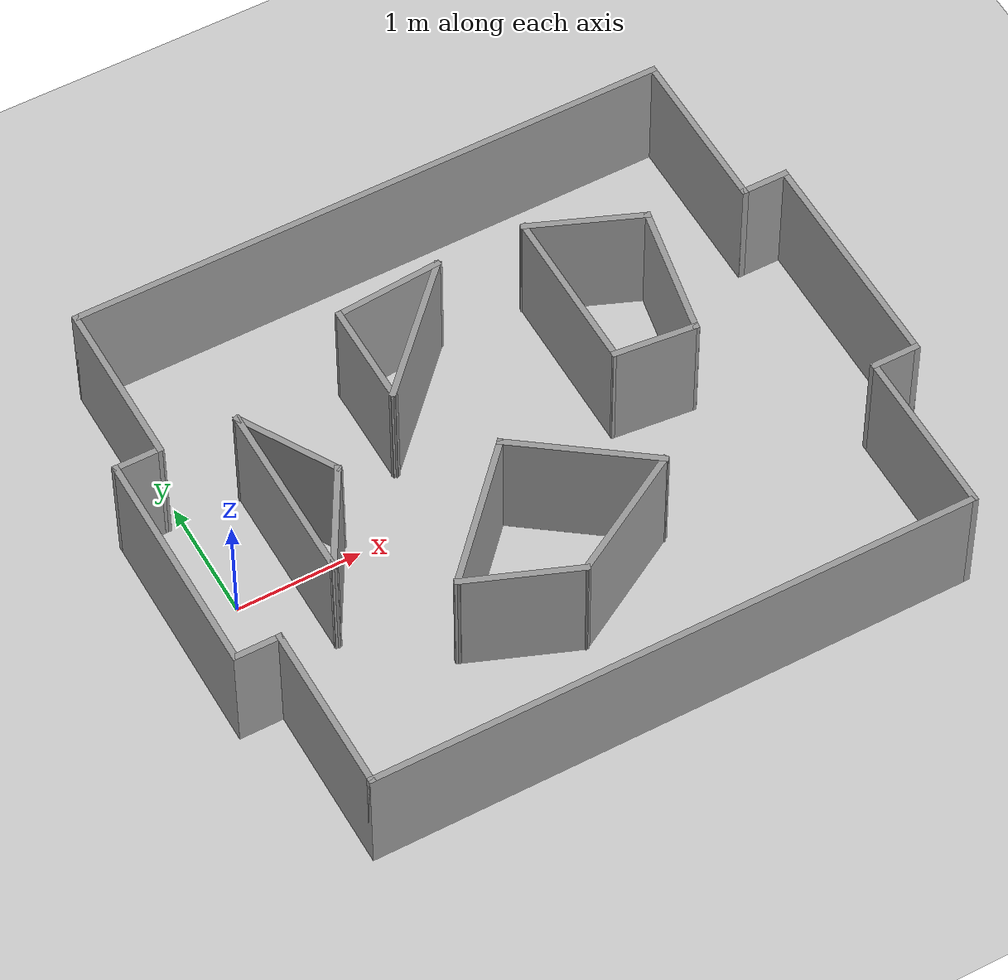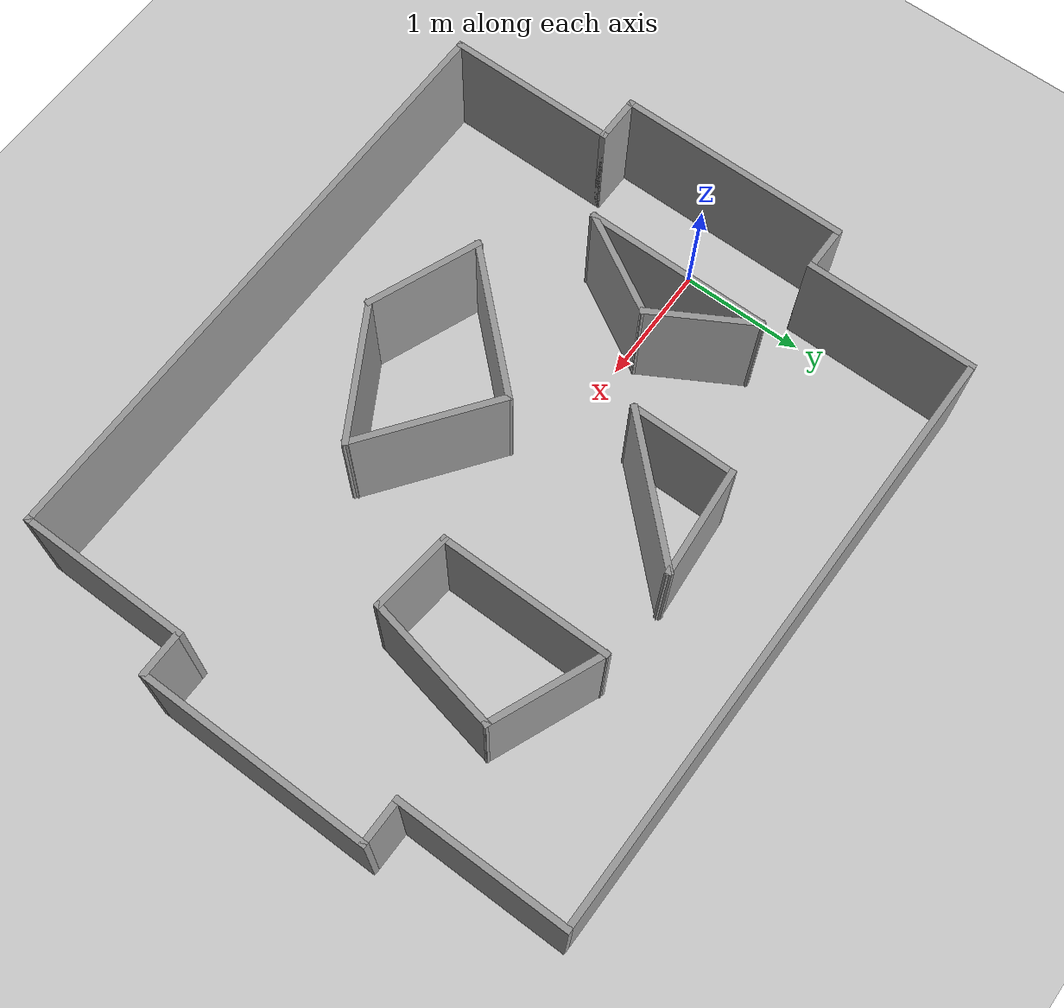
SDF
<sdf version="1.6">
 <world name="default">
  <light name="sun" type="directional">
   <pose>0 0 10 0 -0 0</pose>
   <diffuse>0.8 0.8 0.8 1</diffuse>
   <specular>0.2 0.2 0.2 1</specular>
   <attenuation>
    <range>1000</range>
    <constant>0.9</constant>
    <linear>0.01</linear>
    <quadratic>0.001</quadratic>
   </attenuation>
   <direction>-0.5 0.1 -0.9</direction>
  </light>
  <model name="ground_plane">
   <static>1</static>
   <link name="link">
    <collision name="collision">
     <geometry><plane><normal>0 0 1</normal><size>100 100</size></plane></geometry>
     <surface><friction><ode><mu>100</mu><mu2>50</mu2></ode></friction></surface>
    </collision>
    <visual name="visual">
     <cast_shadows>0</cast_shadows>
     <geometry><plane><normal>0 0 1</normal><size>100 100</size></plane></geometry>
     <material>
      <script><uri>file://media/materials/scripts/gazebo.material</uri><name>Gazebo/Grey</name></script>
     </material>
    </visual>
   </link>
  </model>
  <gravity>0 0 -9.8</gravity>
  <magnetic_field>6e-06 2.3e-05 -4.2e-05</magnetic_field>
  <atmosphere type="adiabatic"/>
  <physics name="default_physics" default="0" type="ode">
   <max_step_size>0.001</max_step_size>
   <real_time_factor>1</real_time_factor>
   <real_time_update_rate>1000</real_time_update_rate>
  </physics>
  <scene><ambient>0.4 0.4 0.4 1</ambient><background>0.7 0.7 0.7 1</background><shadows>1</shadows></scene>
  <spherical_coordinates>
   <surface_model>EARTH_WGS84</surface_model>
   <latitude_deg>0</latitude_deg>
   <longitude_deg>0</longitude_deg>
   <elevation>0</elevation>
   <heading_deg>0</heading_deg>
  </spherical_coordinates>
  <model name="rgarena2-4">
   <pose>2.3 -0.049999 0 0 0 -1.57123</pose>
   <link name="Wall_0">
    <collision name="Wall_0_Collision">
     <geometry><box><size>4.9 0.05 1</size></box></geometry>
     <pose>0 0 0.5 0 -0 0</pose>
    </collision>
    <visual name="Wall_0_Visual">
     <pose>0 0 0.5 0 -0 0</pose>
     <geometry><box><size>4.9 0.05 1</size></box></geometry>
     <material>
      <script><uri>file://media/materials/scripts/gazebo.material</uri><name>Gazebo/Grey</name></script>
      <ambient>1 1 1 1</ambient>
     </material>
     <meta><layer>0</layer></meta>
    </visual>
    <pose>-2.275 -0 0 0 -0 -1.5708</pose>
   </link>
   <link name="Wall_1">
    <collision name="Wall_1_Collision">
     <geometry><box><size>1.4 0.05 1</size></box></geometry>
     <pose>0 0 0.5 0 -0 0</pose>
    </collision>
    <visual name="Wall_1_Visual">
     <pose>0 0 0.5 0 -0 0</pose>
     <geometry><box><size>1.4 0.05 1</size></box></geometry>
     <material>
      <script><uri>file://media/materials/scripts/gazebo.material</uri><name>Gazebo/Grey</name></script>
      <ambient>1 1 1 1</ambient>
     </material>
     <meta><layer>0</layer></meta>
    </visual>
    <pose>-1.6 -2.425 0 0 -0 0</pose>
   </link>
   <link name="Wall_13">
    <collision name="Wall_13_Collision">
     <geometry><box><size>1.9 0.05 1</size></box></geometry>
     <pose>0 0 0.5 0 -0 0</pose>
    </collision>
    <visual name="Wall_13_Visual">
     <pose>0 0 0.5 0 -0 0</pose>
     <geometry><box><size>1.9 0.05 1</size></box></geometry>
     <material>
      <script><uri>file://media/materials/scripts/gazebo.material</uri><name>Gazebo/Grey</name></script>
      <ambient>1 1 1 1</ambient>
     </material>
     <meta><layer>0</layer></meta>
    </visual>
    <pose>-0 2.775 0 0 -0 3.14159</pose>
   </link>
   <link name="Wall_14">
    <collision name="Wall_14_Collision">
     <geometry><box><size>0.4 0.05 1</size></box></geometry>
     <pose>0 0 0.5 0 -0 0</pose>
    </collision>
    <visual name="Wall_14_Visual">
     <pose>0 0 0.5 0 -0 0</pose>
     <geometry><box><size>0.4 0.05 1</size></box></geometry>
     <material>
      <script><uri>file://media/materials/scripts/gazebo.material</uri><name>Gazebo/Grey</name></script>
      <ambient>1 1 1 1</ambient>
     </material>
     <meta><layer>0</layer></meta>
    </visual>
    <pose>-0.925 2.6 0 0 -0 -1.5708</pose>
   </link>
   <link name="Wall_15">
    <collision name="Wall_15_Collision">
     <geometry><box><size>1.4 0.05 1</size></box></geometry>
     <pose>0 0 0.5 0 -0 0</pose>
    </collision>
    <visual name="Wall_15_Visual">
     <pose>0 0 0.5 0 -0 0</pose>
     <geometry><box><size>1.4 0.05 1</size></box></geometry>
     <material>
      <script><uri>file://media/materials/scripts/gazebo.material</uri><name>Gazebo/Grey</name></script>
      <ambient>1 1 1 1</ambient>
     </material>
     <meta><layer>0</layer></meta>
    </visual>
    <pose>-1.6 2.425 0 0 -0 3.14159</pose>
   </link>
   <link name="Wall_2">
    <collision name="Wall_2_Collision">
     <geometry><box><size>0.4 0.05 1</size></box></geometry>
     <pose>0 0 0.5 0 -0 0</pose>
    </collision>
    <visual name="Wall_2_Visual">
     <pose>0 0 0.5 0 -0 0</pose>
     <geometry><box><size>0.4 0.05 1</size></box></geometry>
     <material>
      <script><uri>file://media/materials/scripts/gazebo.material</uri><name>Gazebo/Grey</name></script>
      <ambient>1 1 1 1</ambient>
     </material>
     <meta><layer>0</layer></meta>
    </visual>
    <pose>-0.925 -2.6 0 0 -0 -1.5708</pose>
   </link>
   <link name="Wall_3">
    <collision name="Wall_3_Collision">
     <geometry><box><size>1.9 0.05 1</size></box></geometry>
     <pose>0 0 0.5 0 -0 0</pose>
    </collision>
    <visual name="Wall_3_Visual">
     <pose>0 0 0.5 0 -0 0</pose>
     <geometry><box><size>1.9 0.05 1</size></box></geometry>
     <material>
      <script><uri>file://media/materials/scripts/gazebo.material</uri><name>Gazebo/Grey</name></script>
      <ambient>1 1 1 1</ambient>
     </material>
     <meta><layer>0</layer></meta>
    </visual>
    <pose>-0 -2.775 0 0 -0 0</pose>
   </link>
   <link name="Wall_4">
    <collision name="Wall_4_Collision">
     <geometry><box><size>0.4 0.05 1</size></box></geometry>
     <pose>0 0 0.5 0 -0 0</pose>
    </collision>
    <visual name="Wall_4_Visual">
     <pose>0 0 0.5 0 -0 0</pose>
     <geometry><box><size>0.4 0.05 1</size></box></geometry>
     <material>
      <script><uri>file://media/materials/scripts/gazebo.material</uri><name>Gazebo/Grey</name></script>
      <ambient>1 1 1 1</ambient>
     </material>
     <meta><layer>0</layer></meta>
    </visual>
    <pose>0.925 -2.6 0 0 -0 1.5708</pose>
   </link>
   <link name="Wall_48">
    <collision name="Wall_48_Collision">
     <geometry><box><size>0.90255 0.05 1</size></box></geometry>
     <pose>0 0 0.5 0 -0 0</pose>
    </collision>
    <visual name="Wall_48_Visual">
     <pose>0 0 0.5 0 -0 0</pose>
     <geometry><box><size>0.90255 0.05 1</size></box></geometry>
     <material>
      <script><uri>file://media/materials/scripts/gazebo.material</uri><name>Gazebo/Grey</name></script>
      <ambient>1 1 1 1</ambient>
     </material>
     <meta><layer>0</layer></meta>
    </visual>
    <pose>-1.404 -0.311 0 0 -0 -1.49331</pose>
   </link>
   <link name="Wall_49">
    <collision name="Wall_49_Collision">
     <geometry><box><size>0.874 0.05 1</size></box></geometry>
     <pose>0 0 0.5 0 -0 0</pose>
    </collision>
    <visual name="Wall_49_Visual">
     <pose>0 0 0.5 0 -0 0</pose>
     <geometry><box><size>0.874 0.05 1</size></box></geometry>
     <material>
      <script><uri>file://media/materials/scripts/gazebo.material</uri><name>Gazebo/Grey</name></script>
      <ambient>1 1 1 1</ambient>
     </material>
     <meta><layer>0</layer></meta>
    </visual>
    <pose>-0.959 -0.736 0 0 -0 0</pose>
   </link>
   <link name="Wall_5">
    <collision name="Wall_5_Collision">
     <geometry><box><size>1.4 0.05 1</size></box></geometry>
     <pose>0 0 0.5 0 -0 0</pose>
    </collision>
    <visual name="Wall_5_Visual">
     <pose>0 0 0.5 0 -0 0</pose>
     <geometry><box><size>1.4 0.05 1</size></box></geometry>
     <material>
      <script><uri>file://media/materials/scripts/gazebo.material</uri><name>Gazebo/Grey</name></script>
      <ambient>1 1 1 1</ambient>
     </material>
     <meta><layer>0</layer></meta>
    </visual>
    <pose>1.6 -2.425 0 0 -0 0</pose>
   </link>
   <link name="Wall_50">
    <collision name="Wall_50_Collision">
     <geometry><box><size>1.28082 0.05 1</size></box></geometry>
     <pose>0 0 0.5 0 -0 0</pose>
    </collision>
    <visual name="Wall_50_Visual">
     <pose>0 0 0.5 0 -0 0</pose>
     <geometry><box><size>1.28082 0.05 1</size></box></geometry>
     <material>
      <script><uri>file://media/materials/scripts/gazebo.material</uri><name>Gazebo/Grey</name></script>
      <ambient>1 1 1 1</ambient>
     </material>
     <meta><layer>0</layer></meta>
    </visual>
    <pose>-0.992 -0.311 0 0 -0 2.37918</pose>
   </link>
   <link name="Wall_52">
    <collision name="Wall_52_Collision">
     <geometry><box><size>1.23594 0.05 1</size></box></geometry>
     <pose>0 0 0.5 0 -0 0</pose>
    </collision>
    <visual name="Wall_52_Visual">
     <pose>0 0 0.5 0 -0 0</pose>
     <geometry><box><size>1.23594 0.05 1</size></box></geometry>
     <material>
      <script><uri>file://media/materials/scripts/gazebo.material</uri><name>Gazebo/Grey</name></script>
      <ambient>1 1 1 1</ambient>
     </material>
     <meta><layer>0</layer></meta>
    </visual>
    <pose>0.5545 0.2075 0 0 -0 0.936234</pose>
   </link>
   <link name="Wall_53">
    <collision name="Wall_53_Collision">
     <geometry><box><size>1.14996 0.05 1</size></box></geometry>
     <pose>0 0 0.5 0 -0 0</pose>
    </collision>
    <visual name="Wall_53_Visual">
     <pose>0 0 0.5 0 -0 0</pose>
     <geometry><box><size>1.14996 0.05 1</size></box></geometry>
     <material>
      <script><uri>file://media/materials/scripts/gazebo.material</uri><name>Gazebo/Grey</name></script>
      <ambient>1 1 1 1</ambient>
     </material>
     <meta><layer>0</layer></meta>
    </visual>
    <pose>1.181 0.2085 0 0 -0 -1.04737</pose>
   </link>
   <link name="Wall_54">
    <collision name="Wall_54_Collision">
     <geometry><box><size>0.967226 0.05 1</size></box></geometry>
     <pose>0 0 0.5 0 -0 0</pose>
    </collision>
    <visual name="Wall_54_Visual">
     <pose>0 0 0.5 0 -0 0</pose>
     <geometry><box><size>0.967226 0.05 1</size></box></geometry>
     <material>
      <script><uri>file://media/materials/scripts/gazebo.material</uri><name>Gazebo/Grey</name></script>
      <ambient>1 1 1 1</ambient>
     </material>
     <meta><layer>0</layer></meta>
    </visual>
    <pose>1.288 -0.6945 0 0 -0 -1.94604</pose>
   </link>
   <link name="Wall_55">
    <collision name="Wall_55_Collision">
     <geometry><box><size>1.30104 0.05 1</size></box></geometry>
     <pose>0 0 0.5 0 -0 0</pose>
    </collision>
    <visual name="Wall_55_Visual">
     <pose>0 0 0.5 0 -0 0</pose>
     <geometry><box><size>1.30104 0.05 1</size></box></geometry>
     <material>
      <script><uri>file://media/materials/scripts/gazebo.material</uri><name>Gazebo/Grey</name></script>
      <ambient>1 1 1 1</ambient>
     </material>
     <meta><layer>0</layer></meta>
    </visual>
    <pose>0.6615 -0.6955 0 0 -0 2.39351</pose>
   </link>
   <link name="Wall_57">
    <collision name="Wall_57_Collision">
     <geometry><box><size>0.970641 0.05 1</size></box></geometry>
     <pose>0 0 0.5 0 -0 0</pose>
    </collision>
    <visual name="Wall_57_Visual">
     <pose>0 0 0.5 0 -0 0</pose>
     <geometry><box><size>0.970641 0.05 1</size></box></geometry>
     <material>
      <script><uri>file://media/materials/scripts/gazebo.material</uri><name>Gazebo/Grey</name></script>
      <ambient>1 1 1 1</ambient>
     </material>
     <meta><layer>0</layer></meta>
    </visual>
    <pose>-1.2555 1.2625 0 0 -0 -1.96199</pose>
   </link>
   <link name="Wall_58">
    <collision name="Wall_58_Collision">
     <geometry><box><size>1.40008 0.05 1</size></box></geometry>
     <pose>0 0 0.5 0 -0 0</pose>
    </collision>
    <visual name="Wall_58_Visual">
     <pose>0 0 0.5 0 -0 0</pose>
     <geometry><box><size>1.40008 0.05 1</size></box></geometry>
     <material>
      <script><uri>file://media/materials/scripts/gazebo.material</uri><name>Gazebo/Grey</name></script>
      <ambient>1 1 1 1</ambient>
     </material>
     <meta><layer>0</layer></meta>
    </visual>
    <pose>-0.756 0.837 0 0 -0 0</pose>
   </link>
   <link name="Wall_59">
    <collision name="Wall_59_Collision">
     <geometry><box><size>0.691405 0.05 1</size></box></geometry>
     <pose>0 0 0.5 0 -0 0</pose>
    </collision>
    <visual name="Wall_59_Visual">
     <pose>0 0 0.5 0 -0 0</pose>
     <geometry><box><size>0.691405 0.05 1</size></box></geometry>
     <material>
      <script><uri>file://media/materials/scripts/gazebo.material</uri><name>Gazebo/Grey</name></script>
      <ambient>1 1 1 1</ambient>
     </material>
     <meta><layer>0</layer></meta>
    </visual>
    <pose>-0.048 1.156 0 0 -0 1.46772</pose>
   </link>
   <link name="Wall_6">
    <collision name="Wall_6_Collision">
     <geometry><box><size>4.9 0.05 1</size></box></geometry>
     <pose>0 0 0.5 0 -0 0</pose>
    </collision>
    <visual name="Wall_6_Visual">
     <pose>0 0 0.5 0 -0 0</pose>
     <geometry><box><size>4.9 0.05 1</size></box></geometry>
     <material>
      <script><uri>file://media/materials/scripts/gazebo.material</uri><name>Gazebo/Grey</name></script>
      <ambient>1 1 1 1</ambient>
     </material>
     <meta><layer>0</layer></meta>
    </visual>
    <pose>2.275 -0 0 0 -0 1.5708</pose>
   </link>
   <link name="Wall_60">
    <collision name="Wall_60_Collision">
     <geometry><box><size>1.13614 0.05 1</size></box></geometry>
     <pose>0 0 0.5 0 -0 0</pose>
    </collision>
    <visual name="Wall_60_Visual">
     <pose>0 0 0.5 0 -0 0</pose>
     <geometry><box><size>1.13614 0.05 1</size></box></geometry>
     <material>
      <script><uri>file://media/materials/scripts/gazebo.material</uri><name>Gazebo/Grey</name></script>
      <ambient>1 1 1 1</ambient>
     </material>
     <meta><layer>0</layer></meta>
    </visual>
    <pose>-0.5475 1.5815 0 0 -0 2.9442</pose>
   </link>
   <link name="Wall_62">
    <collision name="Wall_62_Collision">
     <geometry><box><size>0.900128 0.05 1</size></box></geometry>
     <pose>0 0 0.5 0 -0 0</pose>
    </collision>
    <visual name="Wall_62_Visual">
     <pose>0 0 0.5 0 -0 0</pose>
     <geometry><box><size>0.900128 0.05 1</size></box></geometry>
     <material>
      <script><uri>file://media/materials/scripts/gazebo.material</uri><name>Gazebo/Grey</name></script>
      <ambient>1 1 1 1</ambient>
     </material>
     <meta><layer>0</layer></meta>
    </visual>
    <pose>-0.527 -1.6045 0 0 -0 0.52367</pose>
   </link>
   <link name="Wall_63">
    <collision name="Wall_63_Collision">
     <geometry><box><size>0.900077 0.05 1</size></box></geometry>
     <pose>0 0 0.5 0 -0 0</pose>
    </collision>
    <visual name="Wall_63_Visual">
     <pose>0 0 0.5 0 -0 0</pose>
     <geometry><box><size>0.900077 0.05 1</size></box></geometry>
     <material>
      <script><uri>file://media/materials/scripts/gazebo.material</uri><name>Gazebo/Grey</name></script>
      <ambient>1 1 1 1</ambient>
     </material>
     <meta><layer>0</layer></meta>
    </visual>
    <pose>0.209 -1.6045 0 0 -0 -0.52367</pose>
   </link>
   <link name="Wall_64">
    <collision name="Wall_64_Collision">
     <geometry><box><size>1.522 0.05 1</size></box></geometry>
     <pose>0 0 0.5 0 -0 0</pose>
    </collision>
    <visual name="Wall_64_Visual">
     <pose>0 0 0.5 0 -0 0</pose>
     <geometry><box><size>1.522 0.05 1</size></box></geometry>
     <material>
      <script><uri>file://media/materials/scripts/gazebo.material</uri><name>Gazebo/Grey</name></script>
      <ambient>1 1 1 1</ambient>
     </material>
     <meta><layer>0</layer></meta>
    </visual>
    <pose>-0.159 -1.817 0 0 -0 3.14159</pose>
   </link>
   <link name="Wall_7">
    <collision name="Wall_7_Collision">
     <geometry><box><size>1.4 0.05 1</size></box></geometry>
     <pose>0 0 0.5 0 -0 0</pose>
    </collision>
    <visual name="Wall_7_Visual">
     <pose>0 0 0.5 0 -0 0</pose>
     <geometry><box><size>1.4 0.05 1</size></box></geometry>
     <material>
      <script><uri>file://media/materials/scripts/gazebo.material</uri><name>Gazebo/Grey</name></script>
      <ambient>1 1 1 1</ambient>
     </material>
     <meta><layer>0</layer></meta>
    </visual>
    <pose>1.6 2.425 0 0 -0 3.14159</pose>
   </link>
   <link name="Wall_9">
    <collision name="Wall_9_Collision">
     <geometry><box><size>0.4 0.05 1</size></box></geometry>
     <pose>0 0 0.5 0 -0 0</pose>
    </collision>
    <visual name="Wall_9_Visual">
     <pose>0 0 0.5 0 -0 0</pose>
     <geometry><box><size>0.4 0.05 1</size></box></geometry>
     <material>
      <script><uri>file://media/materials/scripts/gazebo.material</uri><name>Gazebo/Grey</name></script>
      <ambient>1 1 1 1</ambient>
     </material>
     <meta><layer>0</layer></meta>
    </visual>
    <pose>0.925 2.6 0 0 -0 1.5708</pose>
   </link>
   <static>1</static>
  </model>
 </world>
</sdf>
